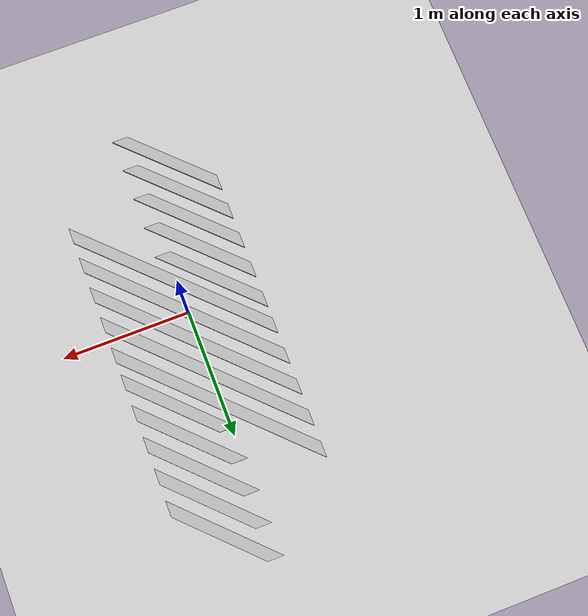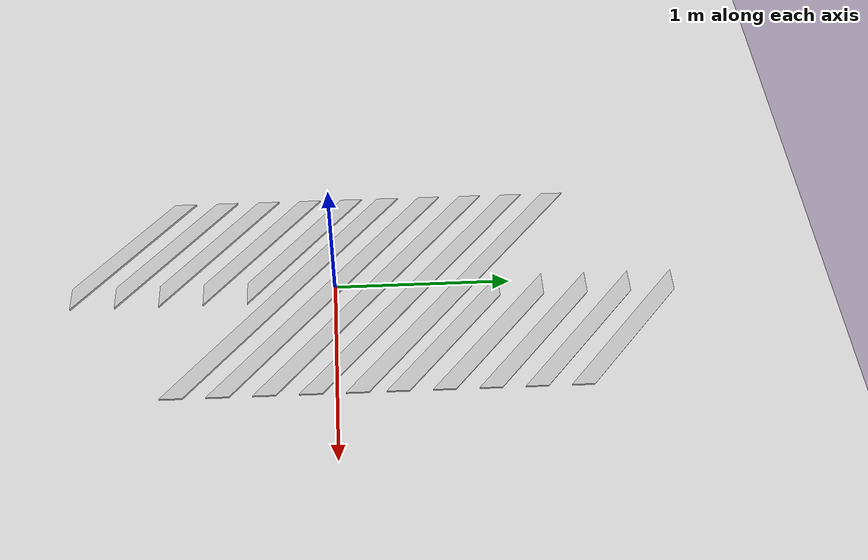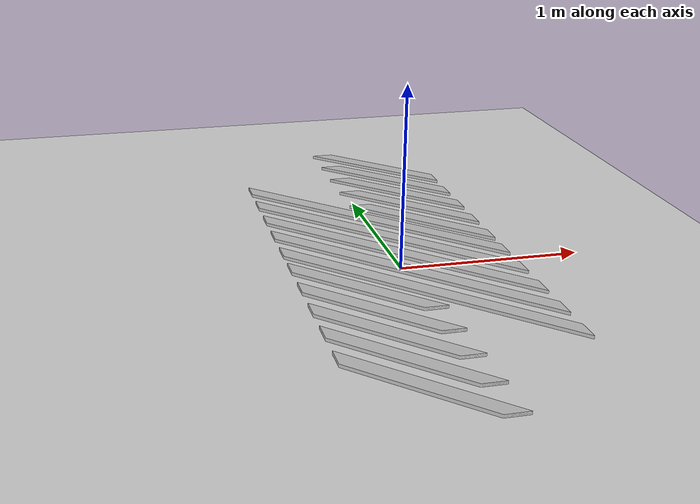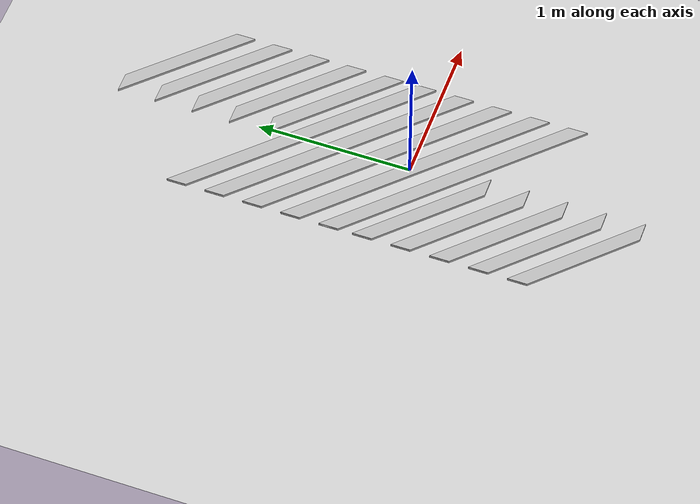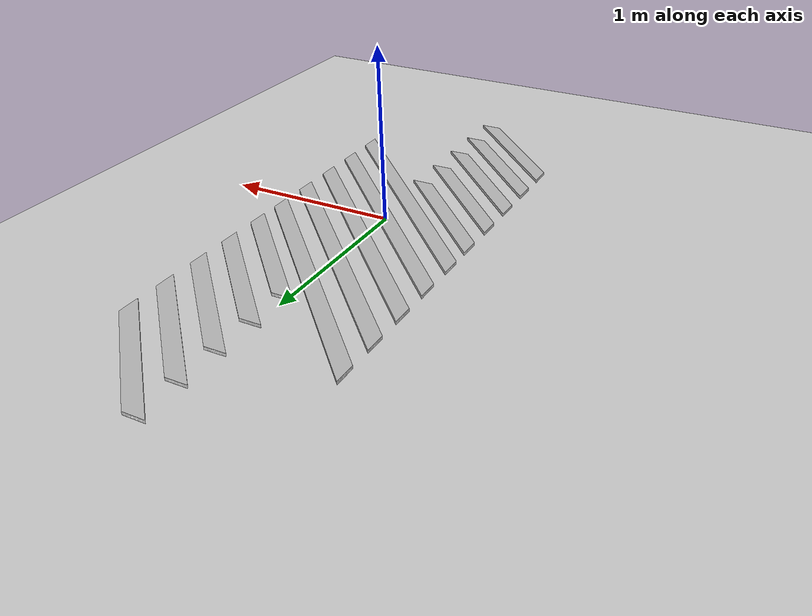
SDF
<?xml version="1.0" ?>
<sdf version="1.6">
    <world name="wood_slats">
        <physics default="true" type="dart">
            <max_step_size>0.001</max_step_size>
            <real_time_factor>1.0</real_time_factor>
        </physics>
        <plugin
                filename="libignition-gazebo-physics-system.so"
                name="ignition::gazebo::systems::Physics">
        </plugin>
        <plugin
                filename="libignition-gazebo-scene-broadcaster-system.so"
                name="ignition::gazebo::systems::SceneBroadcaster">
        </plugin>

        <gui fullscreen="0">
            <!-- 3D scene -->
            <plugin filename="GzScene3D" name="3D View">
                <ignition-gui>
                    <title>3D View</title>
                    <property type="bool" key="showTitleBar">false</property>
                    <property type="string" key="state">docked</property>
                </ignition-gui>
                <engine>ogre</engine>
                <scene>scene</scene>
                <ambient_light>0.4 0.4 0.4</ambient_light>
                <background_color>0.8 0.8 0.8</background_color>
                <camera_pose>2 0 2 0 0.5 3.14</camera_pose>
                <service>/world/default/scene/info</service>
                <pose_topic>/world/default/pose/info</pose_topic>
            </plugin>

            <!-- World control -->
            <plugin filename="WorldControl" name="World control">
                <ignition-gui>
                    <title>World control</title>
                    <property type="bool" key="showTitleBar">false</property>
                    <property type="bool" key="resizable">false</property>
                    <property type="double" key="height">72</property>
                    <property type="double" key="width">121</property>
                    <property type="double" key="z">1</property>
                    <property type="string" key="state">floating</property>
                    <anchors target="3D View">
                        <line own="left" target="left"/>
                        <line own="bottom" target="bottom"/>
                    </anchors>
                </ignition-gui>
                <play_pause>true</play_pause>
                <step>true</step>
                <start_paused>true</start_paused>
                <service>/world/default/control</service>
                <stats_topic>/world/default/stats</stats_topic>
            </plugin>

            <!-- World statistics -->
            <plugin filename="WorldStats" name="World stats">
                <ignition-gui>
                    <title>World stats</title>
                    <property type="bool" key="showTitleBar">false</property>
                    <property type="bool" key="resizable">false</property>
                    <property type="double" key="height">110</property>
                    <property type="double" key="width">290</property>
                    <property type="double" key="z">1</property>
                    <property type="string" key="state">floating</property>
                    <anchors target="3D View">
                        <line own="right" target="right"/>
                        <line own="bottom" target="bottom"/>
                    </anchors>
                </ignition-gui>
                <sim_time>true</sim_time>
                <real_time>true</real_time>
                <real_time_factor>true</real_time_factor>
                <iterations>true</iterations>
                <topic>/world/default/stats</topic>
            </plugin>
        </gui>

        <light type="directional" name="sun">
            <cast_shadows>true</cast_shadows>
            <pose>0 0 10 0 0 0</pose>
            <diffuse>1 1 1 1</diffuse>
            <specular>0.5 0.5 0.5 1</specular>
            <attenuation>
                <range>1000</range>
                <constant>0.9</constant>
                <linear>0.01</linear>
                <quadratic>0.001</quadratic>
            </attenuation>
            <direction>-0.5 0.1 -0.9</direction>
        </light>

        <include>
            <uri>ground_plane</uri>
        </include>

        <include>
            <name>slats_1</name>
            <pose>-1.8 -1.5 -0.075 0 0 0</pose>
            <uri>file:///rl/venv/lib/python3.6/site-packages/gym_ignition_models/drc_practice_wood_slats</uri>
        </include>

        <include>
            <name>slats_2</name>
            <pose>-1.8 -1.25 -0.075 0 0 0</pose>
            <uri>file:///rl/venv/lib/python3.6/site-packages/gym_ignition_models/drc_practice_wood_slats</uri>
        </include>

        <include>
            <name>slats_3</name>
            <pose>-1.8 -1.0 -0.075 0 0 0</pose>
            <uri>file:///rl/venv/lib/python3.6/site-packages/gym_ignition_models/drc_practice_wood_slats</uri>
        </include>

        <include>
            <name>slats_4</name>
            <pose>-1.8 -0.75 -0.075 0 0 0</pose>
            <uri>file:///rl/venv/lib/python3.6/site-packages/gym_ignition_models/drc_practice_wood_slats</uri>
        </include>

        <include>
            <name>slats_5</name>
            <pose>-1.8 -0.50 -0.075 0 0 0</pose>
            <uri>file:///rl/venv/lib/python3.6/site-packages/gym_ignition_models/drc_practice_wood_slats</uri>
        </include>

    </world>
</sdf>

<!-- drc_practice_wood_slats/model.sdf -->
<sdf version="1.5">
  <model name="wood_slats">
    <static>true</static>
    <link name="link">
      <collision name="collision">
        <geometry>
          <mesh>
            <uri>file:///rl/venv/lib/python3.6/site-packages/gym_ignition_models/drc_practice_wood_slats/meshes/wood_slats.dae</uri>
          </mesh>
        </geometry>
        <surface>
          <bounce>
            <restitution_coefficient>0.01</restitution_coefficient>
            <threshold>5.0</threshold>
          </bounce>
          <friction>
            <ode>
              <mu>5</mu>
              <mu2>5</mu2>
            </ode>
          </friction>
          <contact>
            <ode>
              <soft_cfm>0.001</soft_cfm>
              <!--"sponginess", 0.0=hard-->
              <kp>10000.0</kp>
              <kd>1000.0</kd>
              <max_vel>0.01</max_vel>
              <min_depth>0.001</min_depth>
            </ode>
          </contact>
        </surface>
      </collision>
      <visual name="visual">
        <geometry>
          <mesh>
            <uri>file:///rl/venv/lib/python3.6/site-packages/gym_ignition_models/drc_practice_wood_slats/meshes/wood_slats.dae</uri>
          </mesh>
        </geometry>
      </visual>
    </link>
  </model>
</sdf>
